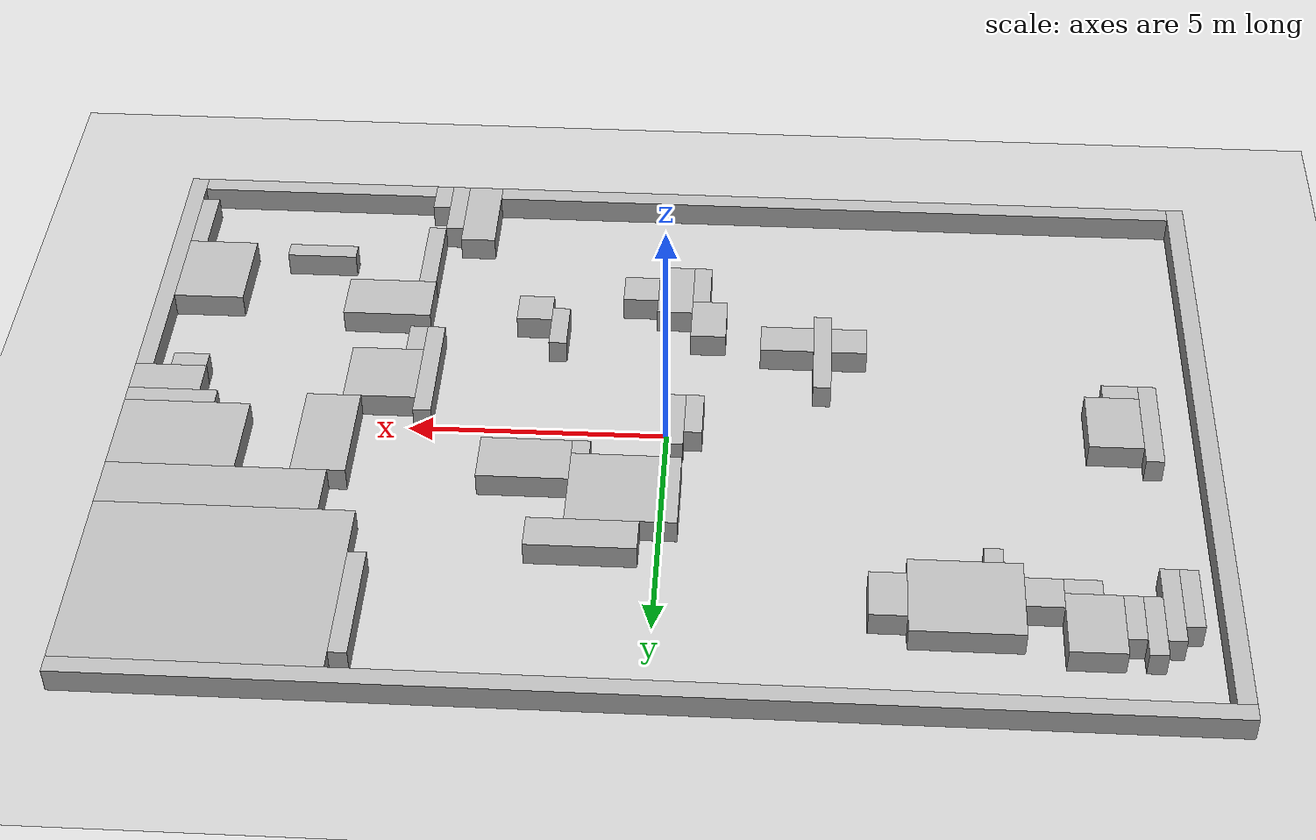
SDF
<?xml version="1.0" ?>
<sdf version="1.6">
  <world name="default">
    <include><uri>model://sun</uri></include>
    <include><uri>model://ground_plane</uri></include>

    <model name="rand_block_0000">
      <static>true</static>
      <pose>0.000000 6.825000 0.250000 0 0 0</pose>
      <link name="link">
        <collision name="collision">
          <geometry><box><size>21.000000 0.350000 0.500000</size></box></geometry>
        </collision>
        <visual name="visual">
          <geometry><box><size>21.000000 0.350000 0.500000</size></box></geometry>
        </visual>
      </link>
    </model>
    <model name="rand_block_0001">
      <static>true</static>
      <pose>-10.325000 -0.175000 0.250000 0 0 0</pose>
      <link name="link">
        <collision name="collision">
          <geometry><box><size>0.350000 13.650000 0.500000</size></box></geometry>
        </collision>
        <visual name="visual">
          <geometry><box><size>0.350000 13.650000 0.500000</size></box></geometry>
        </visual>
      </link>
    </model>
    <model name="rand_block_0002">
      <static>true</static>
      <pose>8.050000 4.725000 0.250000 0 0 0</pose>
      <link name="link">
        <collision name="collision">
          <geometry><box><size>4.900000 3.850000 0.500000</size></box></geometry>
        </collision>
        <visual name="visual">
          <geometry><box><size>4.900000 3.850000 0.500000</size></box></geometry>
        </visual>
      </link>
    </model>
    <model name="rand_block_0003">
      <static>true</static>
      <pose>5.425000 5.075000 0.250000 0 0 0</pose>
      <link name="link">
        <collision name="collision">
          <geometry><box><size>0.350000 2.450000 0.500000</size></box></geometry>
        </collision>
        <visual name="visual">
          <geometry><box><size>0.350000 2.450000 0.500000</size></box></geometry>
        </visual>
      </link>
    </model>
    <model name="rand_block_0004">
      <static>true</static>
      <pose>-8.925000 4.900000 0.250000 0 0 0</pose>
      <link name="link">
        <collision name="collision">
          <geometry><box><size>0.350000 1.400000 0.500000</size></box></geometry>
        </collision>
        <visual name="visual">
          <geometry><box><size>0.350000 1.400000 0.500000</size></box></geometry>
        </visual>
      </link>
    </model>
    <model name="rand_block_0005">
      <static>true</static>
      <pose>-7.875000 4.900000 0.250000 0 0 0</pose>
      <link name="link">
        <collision name="collision">
          <geometry><box><size>1.050000 1.400000 0.500000</size></box></geometry>
        </collision>
        <visual name="visual">
          <geometry><box><size>1.050000 1.400000 0.500000</size></box></geometry>
        </visual>
      </link>
    </model>
    <model name="rand_block_0006">
      <static>true</static>
      <pose>-9.275000 4.375000 0.250000 0 0 0</pose>
      <link name="link">
        <collision name="collision">
          <geometry><box><size>0.350000 1.750000 0.500000</size></box></geometry>
        </collision>
        <visual name="visual">
          <geometry><box><size>0.350000 1.750000 0.500000</size></box></geometry>
        </visual>
      </link>
    </model>
    <model name="rand_block_0007">
      <static>true</static>
      <pose>-8.575000 4.725000 0.250000 0 0 0</pose>
      <link name="link">
        <collision name="collision">
          <geometry><box><size>0.350000 1.050000 0.500000</size></box></geometry>
        </collision>
        <visual name="visual">
          <geometry><box><size>0.350000 1.050000 0.500000</size></box></geometry>
        </visual>
      </link>
    </model>
    <model name="rand_block_0008">
      <static>true</static>
      <pose>-5.600000 4.375000 0.250000 0 0 0</pose>
      <link name="link">
        <collision name="collision">
          <geometry><box><size>2.100000 1.750000 0.500000</size></box></geometry>
        </collision>
        <visual name="visual">
          <geometry><box><size>2.100000 1.750000 0.500000</size></box></geometry>
        </visual>
      </link>
    </model>
    <model name="rand_block_0009">
      <static>true</static>
      <pose>-9.625000 4.200000 0.250000 0 0 0</pose>
      <link name="link">
        <collision name="collision">
          <geometry><box><size>0.350000 1.400000 0.500000</size></box></geometry>
        </collision>
        <visual name="visual">
          <geometry><box><size>0.350000 1.400000 0.500000</size></box></geometry>
        </visual>
      </link>
    </model>
    <model name="rand_block_0010">
      <static>true</static>
      <pose>-4.200000 4.375000 0.250000 0 0 0</pose>
      <link name="link">
        <collision name="collision">
          <geometry><box><size>0.700000 1.050000 0.500000</size></box></geometry>
        </collision>
        <visual name="visual">
          <geometry><box><size>0.700000 1.050000 0.500000</size></box></geometry>
        </visual>
      </link>
    </model>
    <model name="rand_block_0011">
      <static>true</static>
      <pose>-7.000000 4.200000 0.250000 0 0 0</pose>
      <link name="link">
        <collision name="collision">
          <geometry><box><size>0.700000 0.700000 0.500000</size></box></geometry>
        </collision>
        <visual name="visual">
          <geometry><box><size>0.700000 0.700000 0.500000</size></box></geometry>
        </visual>
      </link>
    </model>
    <model name="rand_block_0012">
      <static>true</static>
      <pose>-7.700000 4.025000 0.250000 0 0 0</pose>
      <link name="link">
        <collision name="collision">
          <geometry><box><size>0.700000 0.350000 0.500000</size></box></geometry>
        </collision>
        <visual name="visual">
          <geometry><box><size>0.700000 0.350000 0.500000</size></box></geometry>
        </visual>
      </link>
    </model>
    <model name="rand_block_0013">
      <static>true</static>
      <pose>-6.125000 3.325000 0.250000 0 0 0</pose>
      <link name="link">
        <collision name="collision">
          <geometry><box><size>0.350000 0.350000 0.500000</size></box></geometry>
        </collision>
        <visual name="visual">
          <geometry><box><size>0.350000 0.350000 0.500000</size></box></geometry>
        </visual>
      </link>
    </model>
    <model name="rand_block_0014">
      <static>true</static>
      <pose>1.400000 3.150000 0.250000 0 0 0</pose>
      <link name="link">
        <collision name="collision">
          <geometry><box><size>2.100000 0.700000 0.500000</size></box></geometry>
        </collision>
        <visual name="visual">
          <geometry><box><size>2.100000 0.700000 0.500000</size></box></geometry>
        </visual>
      </link>
    </model>
    <model name="rand_block_0015">
      <static>true</static>
      <pose>0.700000 1.925000 0.250000 0 0 0</pose>
      <link name="link">
        <collision name="collision">
          <geometry><box><size>2.100000 1.750000 0.500000</size></box></geometry>
        </collision>
        <visual name="visual">
          <geometry><box><size>2.100000 1.750000 0.500000</size></box></geometry>
        </visual>
      </link>
    </model>
    <model name="rand_block_0016">
      <static>true</static>
      <pose>8.400000 2.275000 0.250000 0 0 0</pose>
      <link name="link">
        <collision name="collision">
          <geometry><box><size>4.200000 1.050000 0.500000</size></box></geometry>
        </collision>
        <visual name="visual">
          <geometry><box><size>4.200000 1.050000 0.500000</size></box></geometry>
        </visual>
      </link>
    </model>
    <model name="rand_block_0017">
      <static>true</static>
      <pose>2.625000 1.225000 0.250000 0 0 0</pose>
      <link name="link">
        <collision name="collision">
          <geometry><box><size>1.750000 1.050000 0.500000</size></box></geometry>
        </collision>
        <visual name="visual">
          <geometry><box><size>1.750000 1.050000 0.500000</size></box></geometry>
        </visual>
      </link>
    </model>
    <model name="rand_block_0018">
      <static>true</static>
      <pose>6.475000 0.700000 0.250000 0 0 0</pose>
      <link name="link">
        <collision name="collision">
          <geometry><box><size>1.050000 2.100000 0.500000</size></box></geometry>
        </collision>
        <visual name="visual">
          <geometry><box><size>1.050000 2.100000 0.500000</size></box></geometry>
        </visual>
      </link>
    </model>
    <model name="rand_block_0019">
      <static>true</static>
      <pose>9.275000 0.875000 0.250000 0 0 0</pose>
      <link name="link">
        <collision name="collision">
          <geometry><box><size>2.450000 1.750000 0.500000</size></box></geometry>
        </collision>
        <visual name="visual">
          <geometry><box><size>2.450000 1.750000 0.500000</size></box></geometry>
        </visual>
      </link>
    </model>
    <model name="rand_block_0020">
      <static>true</static>
      <pose>1.575000 0.875000 0.250000 0 0 0</pose>
      <link name="link">
        <collision name="collision">
          <geometry><box><size>0.350000 0.350000 0.500000</size></box></geometry>
        </collision>
        <visual name="visual">
          <geometry><box><size>0.350000 0.350000 0.500000</size></box></geometry>
        </visual>
      </link>
    </model>
    <model name="rand_block_0021">
      <static>true</static>
      <pose>-9.275000 -0.350000 0.250000 0 0 0</pose>
      <link name="link">
        <collision name="collision">
          <geometry><box><size>0.350000 2.100000 0.500000</size></box></geometry>
        </collision>
        <visual name="visual">
          <geometry><box><size>0.350000 2.100000 0.500000</size></box></geometry>
        </visual>
      </link>
    </model>
    <model name="rand_block_0022">
      <static>true</static>
      <pose>-0.175000 0.000000 0.250000 0 0 0</pose>
      <link name="link">
        <collision name="collision">
          <geometry><box><size>0.350000 1.400000 0.500000</size></box></geometry>
        </collision>
        <visual name="visual">
          <geometry><box><size>0.350000 1.400000 0.500000</size></box></geometry>
        </visual>
      </link>
    </model>
    <model name="rand_block_0023">
      <static>true</static>
      <pose>-8.575000 -0.350000 0.250000 0 0 0</pose>
      <link name="link">
        <collision name="collision">
          <geometry><box><size>1.050000 1.400000 0.500000</size></box></geometry>
        </collision>
        <visual name="visual">
          <geometry><box><size>1.050000 1.400000 0.500000</size></box></geometry>
        </visual>
      </link>
    </model>
    <model name="rand_block_0024">
      <static>true</static>
      <pose>-0.525000 -0.175000 0.250000 0 0 0</pose>
      <link name="link">
        <collision name="collision">
          <geometry><box><size>0.350000 1.050000 0.500000</size></box></geometry>
        </collision>
        <visual name="visual">
          <geometry><box><size>0.350000 1.050000 0.500000</size></box></geometry>
        </visual>
      </link>
    </model>
    <model name="rand_block_0025">
      <static>true</static>
      <pose>4.725000 -1.225000 0.250000 0 0 0</pose>
      <link name="link">
        <collision name="collision">
          <geometry><box><size>0.350000 2.450000 0.500000</size></box></geometry>
        </collision>
        <visual name="visual">
          <geometry><box><size>0.350000 2.450000 0.500000</size></box></geometry>
        </visual>
      </link>
    </model>
    <model name="rand_block_0026">
      <static>true</static>
      <pose>9.625000 -0.175000 0.250000 0 0 0</pose>
      <link name="link">
        <collision name="collision">
          <geometry><box><size>1.750000 0.350000 0.500000</size></box></geometry>
        </collision>
        <visual name="visual">
          <geometry><box><size>1.750000 0.350000 0.500000</size></box></geometry>
        </visual>
      </link>
    </model>
    <model name="rand_block_0027">
      <static>true</static>
      <pose>5.600000 -1.050000 0.250000 0 0 0</pose>
      <link name="link">
        <collision name="collision">
          <geometry><box><size>1.400000 1.400000 0.500000</size></box></geometry>
        </collision>
        <visual name="visual">
          <geometry><box><size>1.400000 1.400000 0.500000</size></box></geometry>
        </visual>
      </link>
    </model>
    <model name="rand_block_0028">
      <static>true</static>
      <pose>9.800000 -0.700000 0.250000 0 0 0</pose>
      <link name="link">
        <collision name="collision">
          <geometry><box><size>1.400000 0.700000 0.500000</size></box></geometry>
        </collision>
        <visual name="visual">
          <geometry><box><size>1.400000 0.700000 0.500000</size></box></geometry>
        </visual>
      </link>
    </model>
    <model name="rand_block_0029">
      <static>true</static>
      <pose>-8.750000 -1.225000 0.250000 0 0 0</pose>
      <link name="link">
        <collision name="collision">
          <geometry><box><size>0.700000 0.350000 0.500000</size></box></geometry>
        </collision>
        <visual name="visual">
          <geometry><box><size>0.700000 0.350000 0.500000</size></box></geometry>
        </visual>
      </link>
    </model>
    <model name="rand_block_0030">
      <static>true</static>
      <pose>-2.975000 -2.100000 0.250000 0 0 0</pose>
      <link name="link">
        <collision name="collision">
          <geometry><box><size>0.350000 2.100000 0.500000</size></box></geometry>
        </collision>
        <visual name="visual">
          <geometry><box><size>0.350000 2.100000 0.500000</size></box></geometry>
        </visual>
      </link>
    </model>
    <model name="rand_block_0031">
      <static>true</static>
      <pose>9.450000 -1.225000 0.250000 0 0 0</pose>
      <link name="link">
        <collision name="collision">
          <geometry><box><size>0.700000 0.350000 0.500000</size></box></geometry>
        </collision>
        <visual name="visual">
          <geometry><box><size>0.700000 0.350000 0.500000</size></box></geometry>
        </visual>
      </link>
    </model>
    <model name="rand_block_0032">
      <static>true</static>
      <pose>10.325000 -4.025000 0.250000 0 0 0</pose>
      <link name="link">
        <collision name="collision">
          <geometry><box><size>0.350000 5.950000 0.500000</size></box></geometry>
        </collision>
        <visual name="visual">
          <geometry><box><size>0.350000 5.950000 0.500000</size></box></geometry>
        </visual>
      </link>
    </model>
    <model name="rand_block_0033">
      <static>true</static>
      <pose>5.075000 -2.100000 0.250000 0 0 0</pose>
      <link name="link">
        <collision name="collision">
          <geometry><box><size>0.350000 0.700000 0.500000</size></box></geometry>
        </collision>
        <visual name="visual">
          <geometry><box><size>0.350000 0.700000 0.500000</size></box></geometry>
        </visual>
      </link>
    </model>
    <model name="rand_block_0034">
      <static>true</static>
      <pose>-3.500000 -2.450000 0.250000 0 0 0</pose>
      <link name="link">
        <collision name="collision">
          <geometry><box><size>0.700000 0.700000 0.500000</size></box></geometry>
        </collision>
        <visual name="visual">
          <geometry><box><size>0.700000 0.700000 0.500000</size></box></geometry>
        </visual>
      </link>
    </model>
    <model name="rand_block_0035">
      <static>true</static>
      <pose>-2.275000 -2.450000 0.250000 0 0 0</pose>
      <link name="link">
        <collision name="collision">
          <geometry><box><size>1.050000 0.700000 0.500000</size></box></geometry>
        </collision>
        <visual name="visual">
          <geometry><box><size>1.050000 0.700000 0.500000</size></box></geometry>
        </visual>
      </link>
    </model>
    <model name="rand_block_0036">
      <static>true</static>
      <pose>2.275000 -2.625000 0.250000 0 0 0</pose>
      <link name="link">
        <collision name="collision">
          <geometry><box><size>0.350000 1.050000 0.500000</size></box></geometry>
        </collision>
        <visual name="visual">
          <geometry><box><size>0.350000 1.050000 0.500000</size></box></geometry>
        </visual>
      </link>
    </model>
    <model name="rand_block_0037">
      <static>true</static>
      <pose>-0.700000 -2.975000 0.250000 0 0 0</pose>
      <link name="link">
        <collision name="collision">
          <geometry><box><size>0.700000 1.050000 0.500000</size></box></geometry>
        </collision>
        <visual name="visual">
          <geometry><box><size>0.700000 1.050000 0.500000</size></box></geometry>
        </visual>
      </link>
    </model>
    <model name="rand_block_0038">
      <static>true</static>
      <pose>2.800000 -3.150000 0.250000 0 0 0</pose>
      <link name="link">
        <collision name="collision">
          <geometry><box><size>0.700000 0.700000 0.500000</size></box></geometry>
        </collision>
        <visual name="visual">
          <geometry><box><size>0.700000 0.700000 0.500000</size></box></geometry>
        </visual>
      </link>
    </model>
    <model name="rand_block_0039">
      <static>true</static>
      <pose>5.775000 -3.325000 0.250000 0 0 0</pose>
      <link name="link">
        <collision name="collision">
          <geometry><box><size>1.750000 1.050000 0.500000</size></box></geometry>
        </collision>
        <visual name="visual">
          <geometry><box><size>1.750000 1.050000 0.500000</size></box></geometry>
        </visual>
      </link>
    </model>
    <model name="rand_block_0040">
      <static>true</static>
      <pose>-0.000000 -3.850000 0.250000 0 0 0</pose>
      <link name="link">
        <collision name="collision">
          <geometry><box><size>0.700000 1.400000 0.500000</size></box></geometry>
        </collision>
        <visual name="visual">
          <geometry><box><size>0.700000 1.400000 0.500000</size></box></geometry>
        </visual>
      </link>
    </model>
    <model name="rand_block_0041">
      <static>true</static>
      <pose>9.450000 -4.025000 0.250000 0 0 0</pose>
      <link name="link">
        <collision name="collision">
          <geometry><box><size>1.400000 1.750000 0.500000</size></box></geometry>
        </collision>
        <visual name="visual">
          <geometry><box><size>1.400000 1.750000 0.500000</size></box></geometry>
        </visual>
      </link>
    </model>
    <model name="rand_block_0042">
      <static>true</static>
      <pose>-0.525000 -4.025000 0.250000 0 0 0</pose>
      <link name="link">
        <collision name="collision">
          <geometry><box><size>0.350000 1.050000 0.500000</size></box></geometry>
        </collision>
        <visual name="visual">
          <geometry><box><size>0.350000 1.050000 0.500000</size></box></geometry>
        </visual>
      </link>
    </model>
    <model name="rand_block_0043">
      <static>true</static>
      <pose>0.700000 -3.850000 0.250000 0 0 0</pose>
      <link name="link">
        <collision name="collision">
          <geometry><box><size>0.700000 0.700000 0.500000</size></box></geometry>
        </collision>
        <visual name="visual">
          <geometry><box><size>0.700000 0.700000 0.500000</size></box></geometry>
        </visual>
      </link>
    </model>
    <model name="rand_block_0044">
      <static>true</static>
      <pose>5.075000 -4.725000 0.250000 0 0 0</pose>
      <link name="link">
        <collision name="collision">
          <geometry><box><size>0.350000 1.750000 0.500000</size></box></geometry>
        </collision>
        <visual name="visual">
          <geometry><box><size>0.350000 1.750000 0.500000</size></box></geometry>
        </visual>
      </link>
    </model>
    <model name="rand_block_0045">
      <static>true</static>
      <pose>7.350000 -4.725000 0.250000 0 0 0</pose>
      <link name="link">
        <collision name="collision">
          <geometry><box><size>1.400000 0.350000 0.500000</size></box></geometry>
        </collision>
        <visual name="visual">
          <geometry><box><size>1.400000 0.350000 0.500000</size></box></geometry>
        </visual>
      </link>
    </model>
    <model name="rand_block_0046">
      <static>true</static>
      <pose>9.975000 -5.600000 0.250000 0 0 0</pose>
      <link name="link">
        <collision name="collision">
          <geometry><box><size>0.350000 1.400000 0.500000</size></box></geometry>
        </collision>
        <visual name="visual">
          <geometry><box><size>0.350000 1.400000 0.500000</size></box></geometry>
        </visual>
      </link>
    </model>
    <model name="rand_block_0047">
      <static>true</static>
      <pose>4.200000 -6.125000 0.250000 0 0 0</pose>
      <link name="link">
        <collision name="collision">
          <geometry><box><size>0.700000 1.750000 0.500000</size></box></geometry>
        </collision>
        <visual name="visual">
          <geometry><box><size>0.700000 1.750000 0.500000</size></box></geometry>
        </visual>
      </link>
    </model>
    <model name="rand_block_0048">
      <static>true</static>
      <pose>4.725000 -6.300000 0.250000 0 0 0</pose>
      <link name="link">
        <collision name="collision">
          <geometry><box><size>0.350000 1.400000 0.500000</size></box></geometry>
        </collision>
        <visual name="visual">
          <geometry><box><size>0.350000 1.400000 0.500000</size></box></geometry>
        </visual>
      </link>
    </model>
    <model name="rand_block_0049">
      <static>true</static>
      <pose>5.075000 -6.650000 0.250000 0 0 0</pose>
      <link name="link">
        <collision name="collision">
          <geometry><box><size>0.350000 0.700000 0.500000</size></box></geometry>
        </collision>
        <visual name="visual">
          <geometry><box><size>0.350000 0.700000 0.500000</size></box></geometry>
        </visual>
      </link>
    </model>
    <model name="rand_block_0050">
      <static>true</static>
      <pose>-3.150000 -6.825000 0.250000 0 0 0</pose>
      <link name="link">
        <collision name="collision">
          <geometry><box><size>14.000000 0.350000 0.500000</size></box></geometry>
        </collision>
        <visual name="visual">
          <geometry><box><size>14.000000 0.350000 0.500000</size></box></geometry>
        </visual>
      </link>
    </model>
    <model name="rand_block_0051">
      <static>true</static>
      <pose>7.700000 -6.825000 0.250000 0 0 0</pose>
      <link name="link">
        <collision name="collision">
          <geometry><box><size>4.900000 0.350000 0.500000</size></box></geometry>
        </collision>
        <visual name="visual">
          <geometry><box><size>4.900000 0.350000 0.500000</size></box></geometry>
        </visual>
      </link>
    </model>
  </world>
</sdf>
